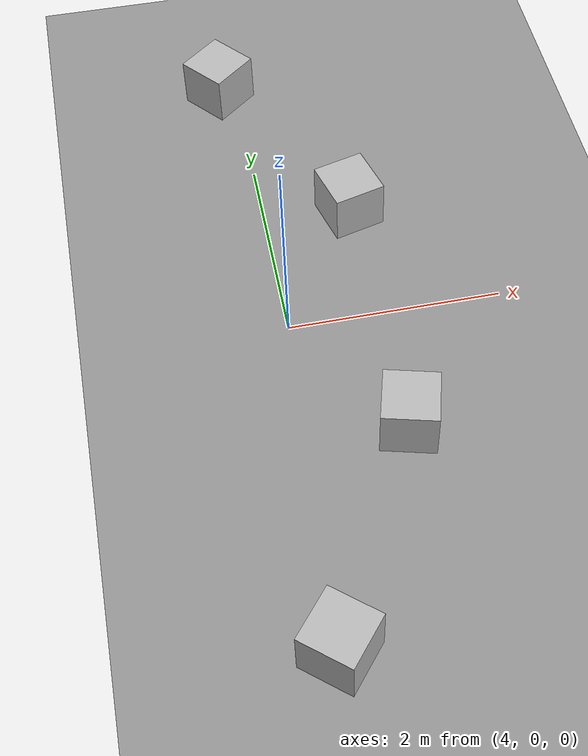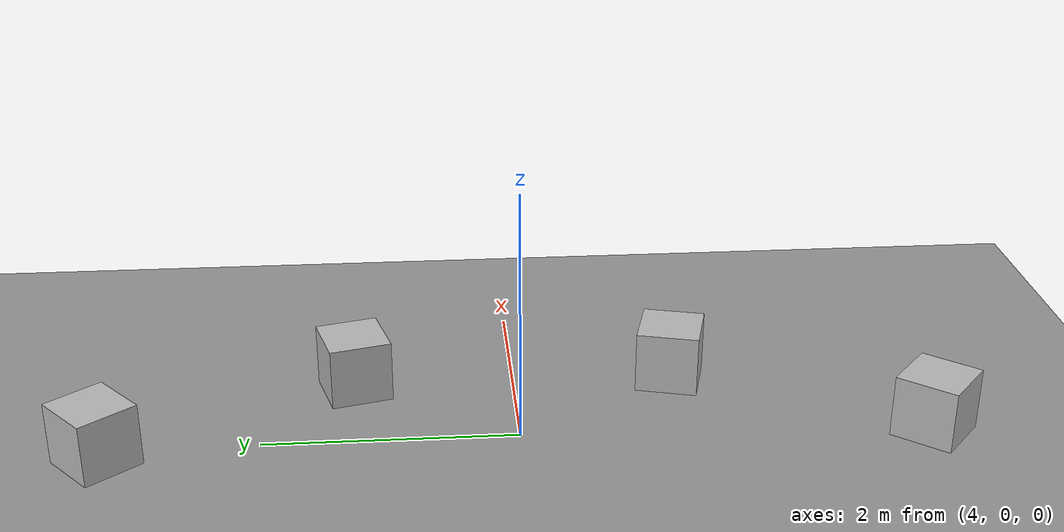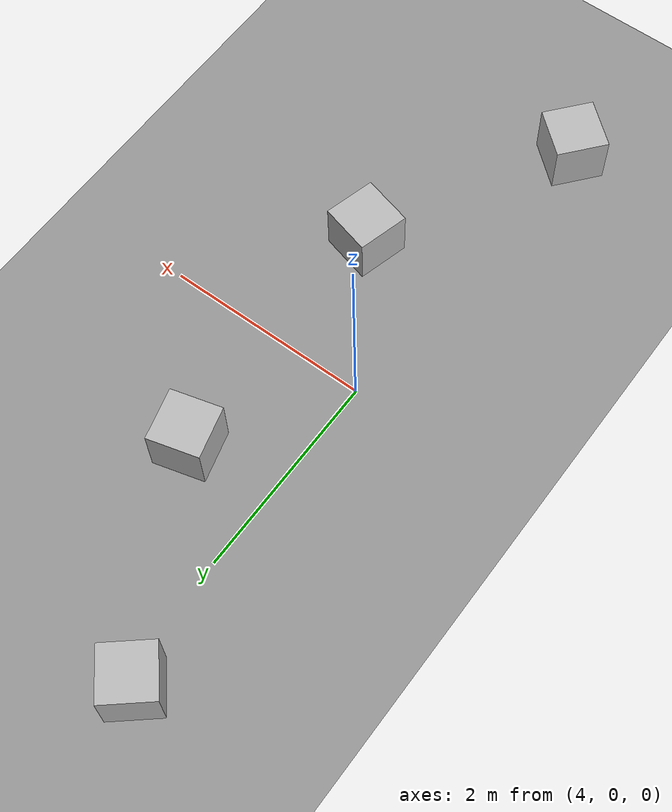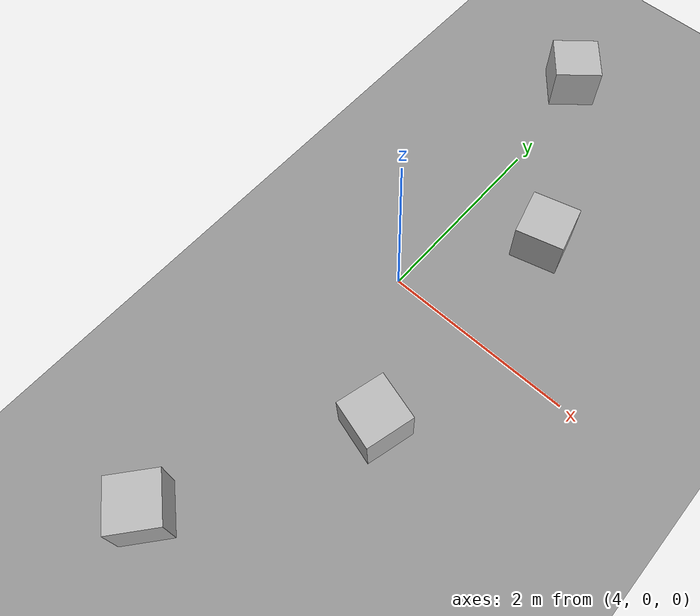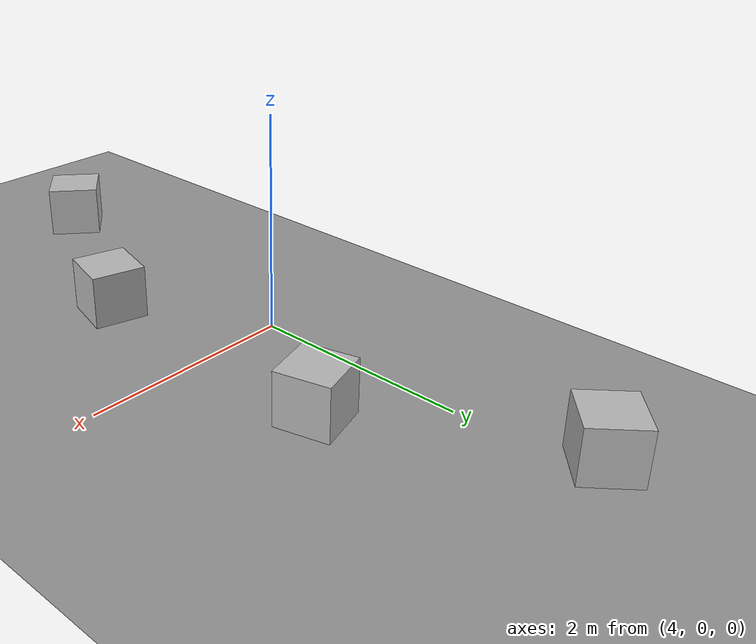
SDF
<?xml version="1.0"?>
<sdf version="1.6">
  <world name="letter_cubes_arc">

    <!-- ==================== Physics ==================== -->
    <physics type="ode">
      <real_time_update_rate>1000.0</real_time_update_rate>
      <max_step_size>0.001</max_step_size>
      <real_time_factor>1</real_time_factor>
    </physics>

    <!-- ==================== Scene ==================== -->
    <scene>
      <ambient>0.6 0.6 0.6 1</ambient>
      <background>0.4 0.5 0.6 1</background>
      <shadows>false</shadows>
    </scene>

    <!-- ==================== Lighting ==================== -->
    <light name="sun" type="directional">
      <cast_shadows>true</cast_shadows>
      <pose>0 0 10 0 0 0</pose>
      <diffuse>0.9 0.9 0.9 1</diffuse>
      <specular>0.3 0.3 0.3 1</specular>
      <direction>-0.3 0.3 -1</direction>
    </light>

    <!-- ==================== Gazebo ROS State Plugin ==================== -->
    <plugin name="gazebo_ros_state" filename="libgazebo_ros_state.so">
      <ros>
        <namespace>/</namespace>
      </ros>
    </plugin>

    <!-- ==================== Ground Plane ==================== -->
    <model name="ground_plane">
      <static>true</static>
      <link name="link">
        <collision name="collision">
          <geometry>
            <plane>
              <normal>0 0 1</normal>
              <size>100 100</size>
            </plane>
          </geometry>
          <surface>
            <friction>
              <ode><mu>100</mu><mu2>50</mu2></ode>
            </friction>
          </surface>
        </collision>
        <visual name="visual">
          <cast_shadows>false</cast_shadows>
          <geometry>
            <plane>
              <normal>0 0 1</normal>
              <size>20 20</size>
            </plane>
          </geometry>
          <material>
            <ambient>0.58 0.58 0.58 1</ambient>
            <diffuse>0.58 0.58 0.58 1</diffuse>
            <specular>0 0 0 1</specular>
          </material>
        </visual>
      </link>
    </model>

    <!-- ==================== A 方块 (红底白字(Red), θ=+40°) ==================== -->
    <include>
      <name>cube_letter_A</name>
      <uri>model://cube_letter_A</uri>
      <static>true</static>
      <!--
        【A 方块位置】
        ARC_RADIUS=5.0, θ=+40°
        x=3.83, y=3.21, z=0.25
        yaw=-2.4440 rad （+X 面正对机器人）
      -->
      <pose>3.83 3.21 0.25 0 0 -2.4440</pose>
    </include>

    <!-- ==================== B 方块 (黄底黑字(Yellow), θ=+15°) ==================== -->
    <include>
      <name>cube_letter_B</name>
      <uri>model://cube_letter_B</uri>
      <static>true</static>
      <!--
        【B 方块位置】
        ARC_RADIUS=5.0, θ=+15°
        x=4.83, y=1.29, z=0.25
        yaw=-2.8806 rad （+X 面正对机器人）
      -->
      <pose>4.83 1.29 0.25 0 0 -2.8806</pose>
    </include>

    <!-- ==================== C 方块 (蓝底白字(Blue), θ=-15°) ==================== -->
    <include>
      <name>cube_letter_C</name>
      <uri>model://cube_letter_C</uri>
      <static>true</static>
      <!--
        【C 方块位置】
        ARC_RADIUS=5.0, θ=-15°
        x=4.83, y=-1.29, z=0.25
        yaw=2.8806 rad （+X 面正对机器人）
      -->
      <pose>4.83 -1.29 0.25 0 0 2.8806</pose>
    </include>

    <!-- ==================== D 方块 (绿底白字(Green), θ=-40°) ==================== -->
    <include>
      <name>cube_letter_D</name>
      <uri>model://cube_letter_D</uri>
      <static>true</static>
      <!--
        【D 方块位置】
        ARC_RADIUS=5.0, θ=-40°
        x=3.83, y=-3.21, z=0.25
        yaw=2.4440 rad （+X 面正对机器人）
      -->
      <pose>3.83 -3.21 0.25 0 0 2.4440</pose>
    </include>

  </world>
</sdf>

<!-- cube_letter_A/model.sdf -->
<sdf version="1.6">
  <model name="cube_letter_A">
    <static>true</static>
    <link name="link">
      <collision name="collision">
        <geometry>
          <box><size>0.5 0.5 0.5</size></box>
        </geometry>
        <surface>
          <friction><ode><mu>0.8</mu><mu2>0.8</mu2></ode></friction>
        </surface>
      </collision>
      <visual name="visual">
        <geometry>
          <box><size>0.5 0.5 0.5</size></box>
        </geometry>
        <material>
          <script>
            <uri>model://cube_letter_A/materials/scripts/</uri>
            <uri>model://cube_letter_A/materials/textures/</uri>
            <name>CubeLetter/A</name>
          </script>
        </material>
      </visual>
    </link>
  </model>
</sdf>

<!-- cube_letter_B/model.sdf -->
<sdf version="1.6">
  <model name="cube_letter_B">
    <static>true</static>
    <link name="link">
      <collision name="collision">
        <geometry>
          <box><size>0.5 0.5 0.5</size></box>
        </geometry>
        <surface>
          <friction><ode><mu>0.8</mu><mu2>0.8</mu2></ode></friction>
        </surface>
      </collision>
      <visual name="visual">
        <geometry>
          <box><size>0.5 0.5 0.5</size></box>
        </geometry>
        <material>
          <script>
            <uri>model://cube_letter_B/materials/scripts/</uri>
            <uri>model://cube_letter_B/materials/textures/</uri>
            <name>CubeLetter/B</name>
          </script>
        </material>
      </visual>
    </link>
  </model>
</sdf>

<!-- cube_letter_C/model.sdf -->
<sdf version="1.6">
  <model name="cube_letter_C">
    <static>true</static>
    <link name="link">
      <collision name="collision">
        <geometry>
          <box><size>0.5 0.5 0.5</size></box>
        </geometry>
        <surface>
          <friction><ode><mu>0.8</mu><mu2>0.8</mu2></ode></friction>
        </surface>
      </collision>
      <visual name="visual">
        <geometry>
          <box><size>0.5 0.5 0.5</size></box>
        </geometry>
        <material>
          <script>
            <uri>model://cube_letter_C/materials/scripts/</uri>
            <uri>model://cube_letter_C/materials/textures/</uri>
            <name>CubeLetter/C</name>
          </script>
        </material>
      </visual>
    </link>
  </model>
</sdf>

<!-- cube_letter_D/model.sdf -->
<sdf version="1.6">
  <model name="cube_letter_D">
    <static>true</static>
    <link name="link">
      <collision name="collision">
        <geometry>
          <box><size>0.5 0.5 0.5</size></box>
        </geometry>
        <surface>
          <friction><ode><mu>0.8</mu><mu2>0.8</mu2></ode></friction>
        </surface>
      </collision>
      <visual name="visual">
        <geometry>
          <box><size>0.5 0.5 0.5</size></box>
        </geometry>
        <material>
          <script>
            <uri>model://cube_letter_D/materials/scripts/</uri>
            <uri>model://cube_letter_D/materials/textures/</uri>
            <name>CubeLetter/D</name>
          </script>
        </material>
      </visual>
    </link>
  </model>
</sdf>
